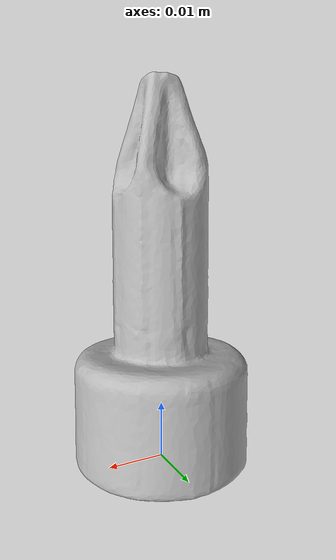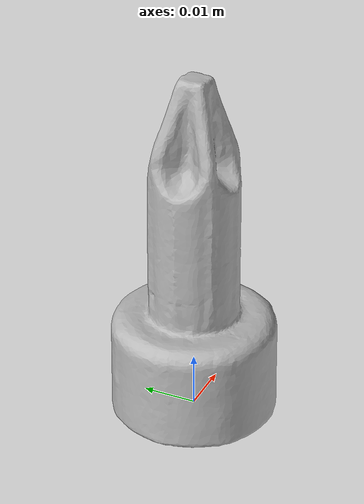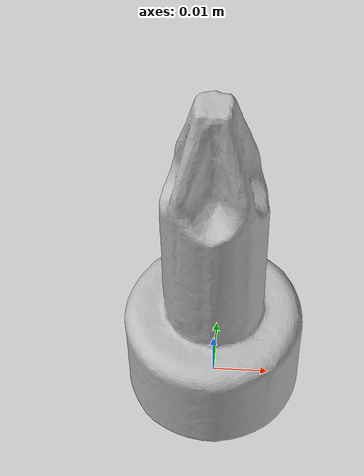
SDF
<?xml version="1.0" ?>
<sdf version='1.8'>
  <model name='ycb_072-d_toy_airplane'>
    <link name='body'>
      <inertial>
        <mass>0.0248034910845</mass>
        <pose>0.00013776781 -0.000139720971 0.0213293945 0 0 0</pose>
        <inertia>
          <ixx>7.106239566e-06</ixx>
          <ixy>4.55495577706e-09</ixy>
          <ixz>3.11984498703e-09</ixz>
          <iyy>7.09572016763e-06</iyy>
          <iyz>-2.73442977419e-08</iyz>
          <izz>2.28635581893e-06</izz>
        </inertia>
      </inertial>
      <visual name='ycb_072-d_toy_airplane_visual'>
        <pose>0.022371 -0.001596 2.6e-05 0 0 0</pose>
        <geometry>
          <mesh>
            <uri>model://ycb_072-d_toy_airplane/meshes/textured.dae</uri>
          </mesh>
        </geometry>
      </visual>
      <collision name='ycb_072-d_toy_airplane_collision'>
        <pose>0.022371 -0.001596 2.6e-05 0 0 0</pose>
        <geometry>
          <mesh>
            <uri>model://ycb_072-d_toy_airplane/meshes/nontextured.stl</uri>
          </mesh>
        </geometry>
        <max_contacts>10</max_contacts>
        <surface>
          <contact>
            <ode>
              <kp>1e15</kp>
              <kd>1e13</kd>
            </ode>
          </contact>
        </surface>
      </collision>
    </link>
  </model>
</sdf>
